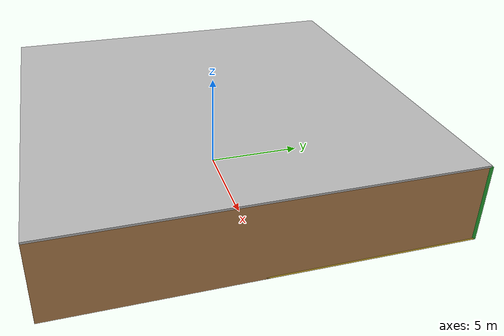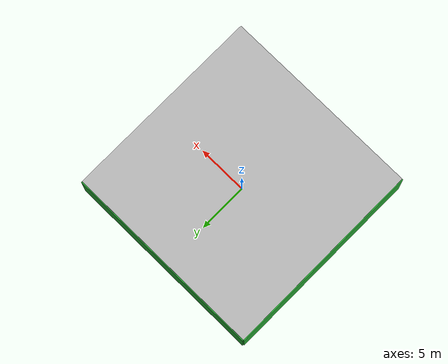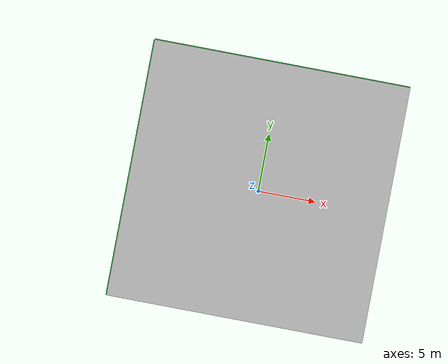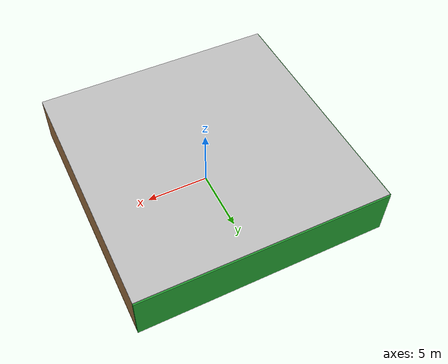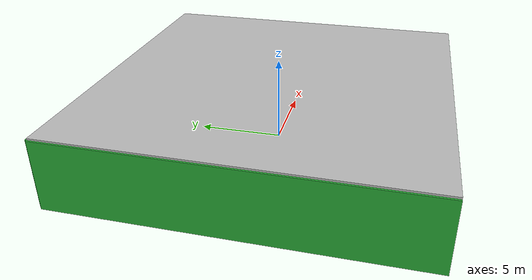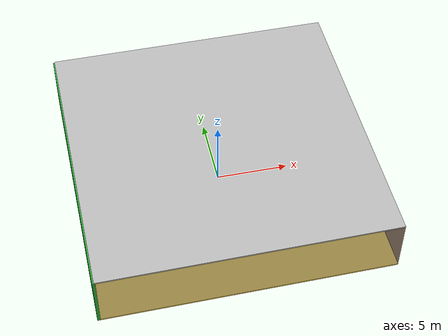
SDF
<sdf version="1.4">
 <world name="default">
  <physics type="ode">
   <max_step_size>0.001</max_step_size>
   <real_time_factor>1</real_time_factor>
   <real_time_update_rate>1000</real_time_update_rate>
   <gravity>0 0 -9.8</gravity>
  </physics>
  <scene><ambient>0.4 0.4 0.4 1</ambient><background>0.7 0.7 0.7 1</background><shadows>1</shadows></scene>
  <model name="Surrounding">
   <static>1</static>
   <link name="Ceiling">
    <collision name="Ceiling_Collision"><geometry><box><size>20 20 0.1</size></box></geometry></collision>
    <visual name="Ceiling_Visual">
     <geometry><box><size>20 20 0.1</size></box></geometry>
     <material>
      <script><uri>file://media/materials/scripts/gazebo.material</uri><name>Gazebo/LightOn</name></script>
     </material>
    </visual>
    <pose>0 0 4.05 0 0 0</pose>
   </link>
   <link name="Wall_South">
    <collision name="Wall_South_Collision">
     <geometry><box><size>20 0 4</size></box></geometry>
     <pose>0 0 2 0 -0 0</pose>
    </collision>
    <visual name="Wall_South_Visual">
     <pose>0 0 2 0 -0 0</pose>
     <geometry><box><size>20 0 4</size></box></geometry>
     <material>
      <script><uri>file://media/materials/scripts/gazebo.material</uri><name>Gazebo/GreyTransparent</name></script>
     </material>
    </visual>
    <velocity_decay><linear>0</linear><angular>0</angular></velocity_decay>
    <pose>0 -10 0 0 -0 0</pose>
   </link>
   <link name="Wall_East">
    <collision name="Wall_21_Collision">
     <geometry><box><size>20 0 4</size></box></geometry>
     <pose>0 0 2 0 -0 0</pose>
    </collision>
    <visual name="Wall_21_Visual">
     <pose>0 0 2 0 -0 0</pose>
     <geometry><box><size>20 0 4</size></box></geometry>
     <material>
      <script><uri>file://media/materials/scripts/gazebo.material</uri><name>Gazebo/Wood</name></script>
     </material>
    </visual>
    <velocity_decay><linear>0</linear><angular>0</angular></velocity_decay>
    <pose>10 0 0 0 -0 1.5708</pose>
   </link>
   <link name="Wall_North">
    <collision name="Wall_22_Collision">
     <geometry><box><size>20 0.2 4</size></box></geometry>
     <pose>0 0 2 0 -0 0</pose>
    </collision>
    <visual name="Wall_22_Visual">
     <pose>0 0 2 0 -0 0</pose>
     <geometry><box><size>20 0.2 4</size></box></geometry>
     <material>
      <script><uri>file://media/materials/scripts/gazebo.material</uri><name>Gazebo/Green</name></script>
     </material>
    </visual>
    <velocity_decay><linear>0</linear><angular>0</angular></velocity_decay>
    <pose>0 10 0 0 -0 0</pose>
   </link>
   <link name="Wall_West">
    <collision name="Wall_23_Collision">
     <geometry><box><size>20 0.2 4</size></box></geometry>
     <pose>0 0 2 0 -0 0</pose>
    </collision>
    <visual name="Wall_23_Visual">
     <pose>0 0 2 0 -0 0</pose>
     <geometry><box><size>20 0.2 4</size></box></geometry>
     <material>
      <script><uri>file://media/materials/scripts/gazebo.material</uri><name>Gazebo/Green</name></script>
     </material>
    </visual>
    <velocity_decay><linear>0</linear><angular>0</angular></velocity_decay>
    <pose>-10 0 0 0 0 -1.5708</pose>
   </link>
   <link name="Ground_link">
    <collision name="collision">
     <pose>0 0 .05 0 -0 0</pose>
     <geometry><box><size>20 20 0.1</size></box></geometry>
    </collision>
    <visual name="visual">
     <pose>0 0 .05 0 -0 0</pose>
     <geometry><box><size>20 20 0.1</size></box></geometry>
     <material>
      <script><uri>file://media/materials/scripts/gazebo.material</uri><name>Gazebo/Gold</name></script>
     </material>
    </visual>
   </link>
   <static>1</static>
  </model>
  <spherical_coordinates>
   <surface_model>EARTH_WGS84</surface_model>
   <latitude_deg>0</latitude_deg>
   <longitude_deg>0</longitude_deg>
   <elevation>0</elevation>
   <heading_deg>0</heading_deg>
  </spherical_coordinates>
  <light name="lightball_0" type="diffuse">
   <diffuse>0.8 0.8 0.8 1</diffuse>
   <specular>0.2 0.2 0.2 1</specular>
   <attenuation>
    <range>100</range>
    <constant>0.7</constant>
    <linear>0.01</linear>
    <quadratic>0.001</quadratic>
   </attenuation>
   <direction>-0.5 0.1 -0.9</direction>
   <pose>-7.97717676222 -7.74132467228 0.759411356508 0 0 0</pose>
  </light>
  <light name="lightball_1" type="diffuse">
   <diffuse>0.8 0.8 0.8 1</diffuse>
   <specular>0.2 0.2 0.2 1</specular>
   <attenuation>
    <range>100</range>
    <constant>0.7</constant>
    <linear>0.01</linear>
    <quadratic>0.001</quadratic>
   </attenuation>
   <direction>-0.5 0.1 -0.9</direction>
   <pose>-9.0648062347 -6.67663949605 1.85667675252 0 0 0</pose>
  </light>
  <light name="lightball_2" type="diffuse">
   <diffuse>0.8 0.8 0.8 1</diffuse>
   <specular>0.2 0.2 0.2 1</specular>
   <attenuation>
    <range>100</range>
    <constant>0.7</constant>
    <linear>0.01</linear>
    <quadratic>0.001</quadratic>
   </attenuation>
   <direction>-0.5 0.1 -0.9</direction>
   <pose>6.75822942637 7.5825861391 3.8267893191 0 0 0</pose>
  </light>
  <light name="lightball_3" type="diffuse">
   <diffuse>0.8 0.8 0.8 1</diffuse>
   <specular>0.2 0.2 0.2 1</specular>
   <attenuation>
    <range>100</range>
    <constant>0.7</constant>
    <linear>0.01</linear>
    <quadratic>0.001</quadratic>
   </attenuation>
   <direction>-0.5 0.1 -0.9</direction>
   <pose>-0.275484400401 -3.26390668236 0.502650882409 0 0 0</pose>
  </light>
  <light name="lightball_4" type="diffuse">
   <diffuse>0.8 0.8 0.8 1</diffuse>
   <specular>0.2 0.2 0.2 1</specular>
   <attenuation>
    <range>100</range>
    <constant>0.7</constant>
    <linear>0.01</linear>
    <quadratic>0.001</quadratic>
   </attenuation>
   <direction>-0.5 0.1 -0.9</direction>
   <pose>-4.5587278033 1.38821450784 0.989265772555 0 0 0</pose>
  </light>
  <light name="lightball_5" type="diffuse">
   <diffuse>0.8 0.8 0.8 1</diffuse>
   <specular>0.2 0.2 0.2 1</specular>
   <attenuation>
    <range>100</range>
    <constant>0.7</constant>
    <linear>0.01</linear>
    <quadratic>0.001</quadratic>
   </attenuation>
   <direction>-0.5 0.1 -0.9</direction>
   <pose>7.80839870358 5.13464926811 1.63399074919 0 0 0</pose>
  </light>
  <light name="lightball_6" type="diffuse">
   <diffuse>0.8 0.8 0.8 1</diffuse>
   <specular>0.2 0.2 0.2 1</specular>
   <attenuation>
    <range>100</range>
    <constant>0.7</constant>
    <linear>0.01</linear>
    <quadratic>0.001</quadratic>
   </attenuation>
   <direction>-0.5 0.1 -0.9</direction>
   <pose>6.9959906158 0.330204128299 1.28561478104 0 0 0</pose>
  </light>
  <light name="lightball_7" type="diffuse">
   <diffuse>0.8 0.8 0.8 1</diffuse>
   <specular>0.2 0.2 0.2 1</specular>
   <attenuation>
    <range>100</range>
    <constant>0.7</constant>
    <linear>0.01</linear>
    <quadratic>0.001</quadratic>
   </attenuation>
   <direction>-0.5 0.1 -0.9</direction>
   <pose>-0.499403445539 -1.76544121671 2.86262627341 0 0 0</pose>
  </light>
  <include>
   <uri>model://textured_shapes</uri>
   <pose>-8.1997567471 -4.78586894652 0 0 0 2.86024585807</pose>
  </include>
  <include><uri>model://cabinet</uri><pose>-4.66547820008 -5.29429715012 0 0 0 0.426524873342</pose></include>
 </world>
</sdf>

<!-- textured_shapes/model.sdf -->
<sdf version="1.6">
  <model name="textured_shapes">
    <pose>0 0 0.5 0 0 0</pose>
    <link name="box">
      <pose>0 -1.5 0 0 0 0</pose>
      <collision name="collision">
        <geometry>
          <box>
            <size>1 1 1</size>
          </box>
        </geometry>
      </collision>
      <visual name="visual">
        <geometry>
          <box>
            <size>1 1 1</size>
          </box>
        </geometry>
        <material>
          <script>
            <uri>model://../model_source/models/textured_shapes/materials/scripts</uri>
            <uri>model://../model_source/models/textured_shapes/materials/textures</uri>
            <name>TexturedShape/Squares</name>
          </script>
        </material>
      </visual>
    </link>
    <link name="sphere">
      <collision name="collision">
        <geometry>
          <sphere>
            <radius>0.5</radius>
          </sphere>
        </geometry>
      </collision>
      <visual name="visual">
        <geometry>
          <sphere>
            <radius>0.5</radius>
          </sphere>
        </geometry>
        <material>
          <script>
            <uri>model://../model_source/models/textured_shapes/materials/scripts</uri>
            <uri>model://../model_source/models/textured_shapes/materials/textures</uri>
            <name>TexturedShape/Squares</name>
          </script>
        </material>
      </visual>
    </link>
    <link name="cylinder">
      <pose>0 1.5 0 0 0 0</pose>
      <collision name="collision">
        <geometry>
          <cylinder>
            <radius>0.5</radius>
            <length>1</length>
          </cylinder>
        </geometry>
      </collision>
      <visual name="visual">
        <geometry>
          <cylinder>
            <radius>0.5</radius>
            <length>1</length>
          </cylinder>
        </geometry>
        <material>
          <script>
            <uri>model://../model_source/models/textured_shapes/materials/scripts</uri>
            <uri>model://../model_source/models/textured_shapes/materials/textures</uri>
            <name>TexturedShape/Squares</name>
          </script>
        </material>
      </visual>
    </link>
  </model>
</sdf>

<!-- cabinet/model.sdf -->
<sdf version="1.5">
  <model name="cabinet">
    <static>true</static>
    <link name="cabinet_bottom_plate">
      <inertial>
        <pose>0 0 -1 0 0 0</pose>
        <inertia>
          <ixx>2.050000</ixx>
          <ixy>0</ixy>
          <ixz>0</ixz>
          <iyy>2.050000</iyy>
          <iyz>0</iyz>
          <izz>2.050000</izz>
        </inertia>
        <mass>25.000000</mass>
      </inertial>
      <collision name="cabinet_bottom_plate_geom">
        <pose>0 0 0.010000 0 0 0</pose>
        <geometry>
          <box>
            <size>0.450000 0.450000 0.020000</size>
          </box>
        </geometry>
      </collision>
      <visual name="cabinet_bottom_plate_geom_visual">
        <pose>0 0 0.010000 0 0 0</pose>
        <geometry>
          <box>
            <size>0.450000 0.450000 0.020000</size>
          </box>
        </geometry>
        <material>
          <script>
            <uri>model://media/materials/scripts/gazebo.material</uri>
            <name>Gazebo/Wood</name>
          </script>
        </material>
      </visual>
      <collision name="cabinet_bottom_plate_geom_cabinet_back_plate">
        <pose>0.235000 0 0.510000 0 0 0</pose>
        <geometry>
          <box>
            <size>0.020000 0.450000 1.020000</size>
          </box>
        </geometry>
      </collision>
      <visual name="cabinet_bottom_plate_geom_cabinet_back_plate_visual">
        <pose>0.235000 0 0.510000 0 0 0</pose>
        <geometry>
          <box>
            <size>0.020000 0.450000 1.020000</size>
          </box>
        </geometry>
        <material>
          <script>
            <uri>model://media/materials/scripts/gazebo.material</uri>
            <name>Gazebo/Wood</name>
          </script>
        </material>
      </visual>
      <collision name="cabinet_bottom_plate_geom_cabinet_left_plate">
        <pose>0 0.235000 0.510000 0 0 0</pose>
        <geometry>
          <box>
            <size>0.450000 0.020000 1.020000</size>
          </box>
        </geometry>
      </collision>
      <visual name="cabinet_bottom_plate_geom_cabinet_left_plate_visual">
        <pose>0 0.235000 0.510000 0 0 0</pose>
        <geometry>
          <box>
            <size>0.450000 0.020000 1.020000</size>
          </box>
        </geometry>
        <material>
          <script>
            <uri>model://media/materials/scripts/gazebo.material</uri>
            <name>Gazebo/Wood</name>
          </script>
        </material>
      </visual>
      <collision name="cabinet_bottom_plate_geom_cabinet_middle_plate">
        <pose>0 0 0.510000 0 0 0</pose>
        <geometry>
          <box>
            <size>0.450000 0.450000 0.020000</size>
          </box>
        </geometry>
      </collision>
      <visual name="cabinet_bottom_plate_geom_cabinet_middle_plate_visual">
        <pose>0 0 0.510000 0 0 0</pose>
        <geometry>
          <box>
            <size>0.450000 0.450000 0.020000</size>
          </box>
        </geometry>
        <material>
          <script>
            <uri>model://media/materials/scripts/gazebo.material</uri>
            <name>Gazebo/Wood</name>
          </script>
        </material>
      </visual>
      <collision name="cabinet_bottom_plate_geom_cabinet_right_plate">
        <pose>0 -0.235000 0.510000 0 0 0</pose>
        <geometry>
          <box>
            <size>0.450000 0.020000 1.020000</size>
          </box>
        </geometry>
      </collision>
      <visual name="cabinet_bottom_plate_geom_cabinet_right_plate_visual">
        <pose>0 -0.235000 0.510000 0 0 0</pose>
        <geometry>
          <box>
            <size>0.450000 0.020000 1.020000</size>
          </box>
        </geometry>
        <material>
          <script>
            <uri>model://media/materials/scripts/gazebo.material</uri>
            <name>Gazebo/Wood</name>
          </script>
        </material>
      </visual>
      <collision name="cabinet_bottom_plate_geom_cabinet_top_plate">
        <pose>0 0 1.010000 0 0 0</pose>
        <geometry>
          <box>
            <size>0.450000 0.450000 0.020000</size>
          </box>
        </geometry>
      </collision>
      <visual name="cabinet_bottom_plate_geom_cabinet_top_plate_visual">
        <pose>0 0 1.010000 0 0 0</pose>
        <geometry>
          <box>
            <size>0.450000 0.450000 0.020000</size>
          </box>
        </geometry>
        <material>
          <script>
            <uri>model://media/materials/scripts/gazebo.material</uri>
            <name>Gazebo/Wood</name>
          </script>
        </material>
      </visual>
    </link>
  </model>
</sdf>
